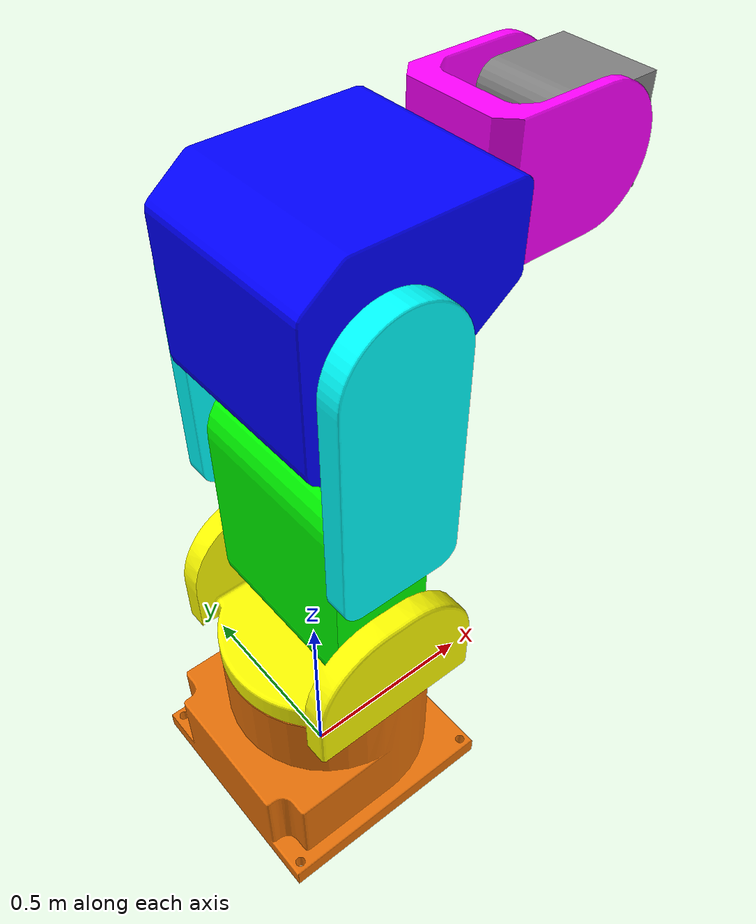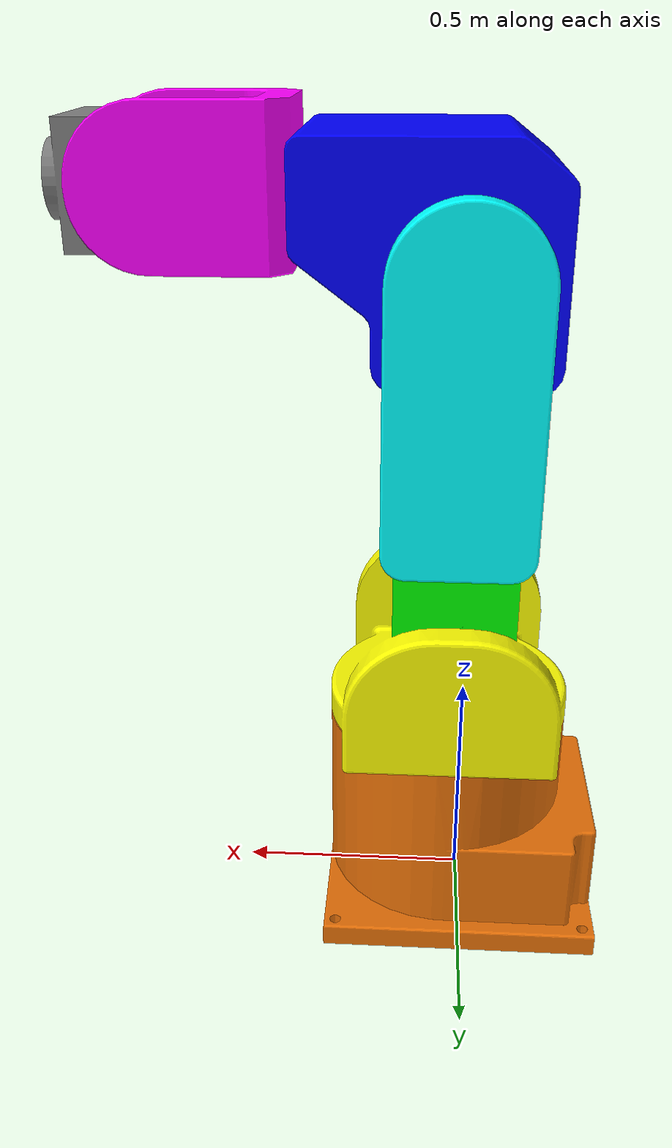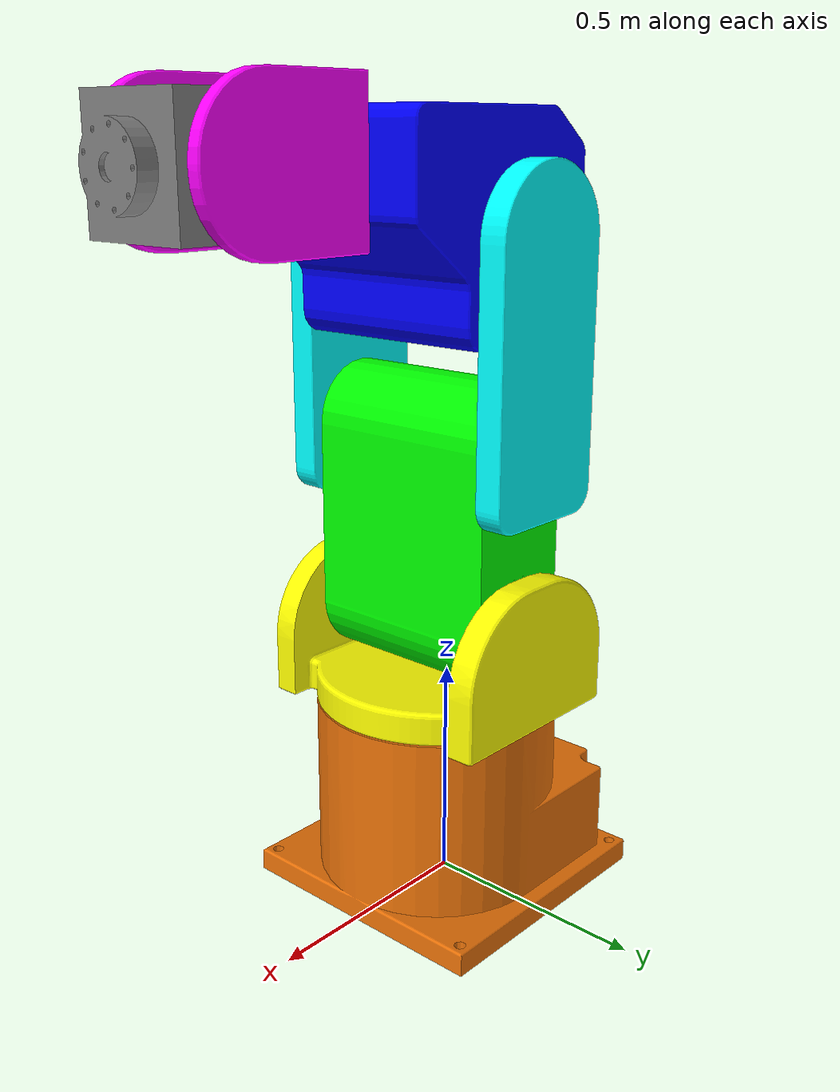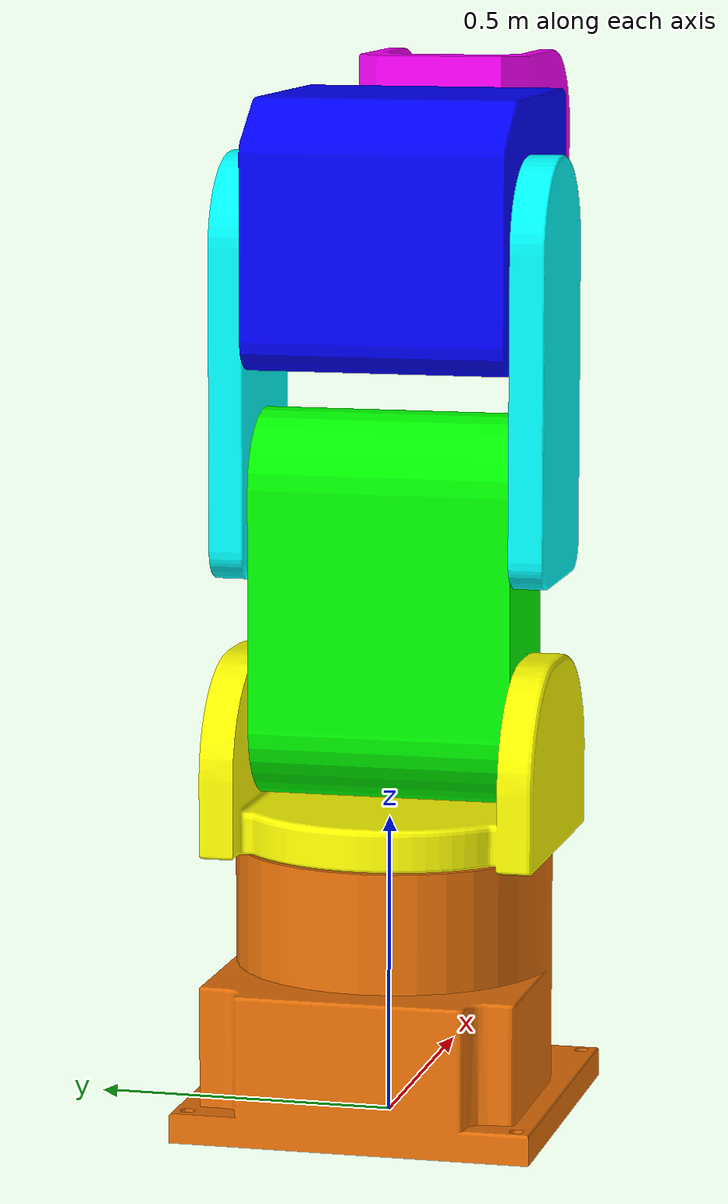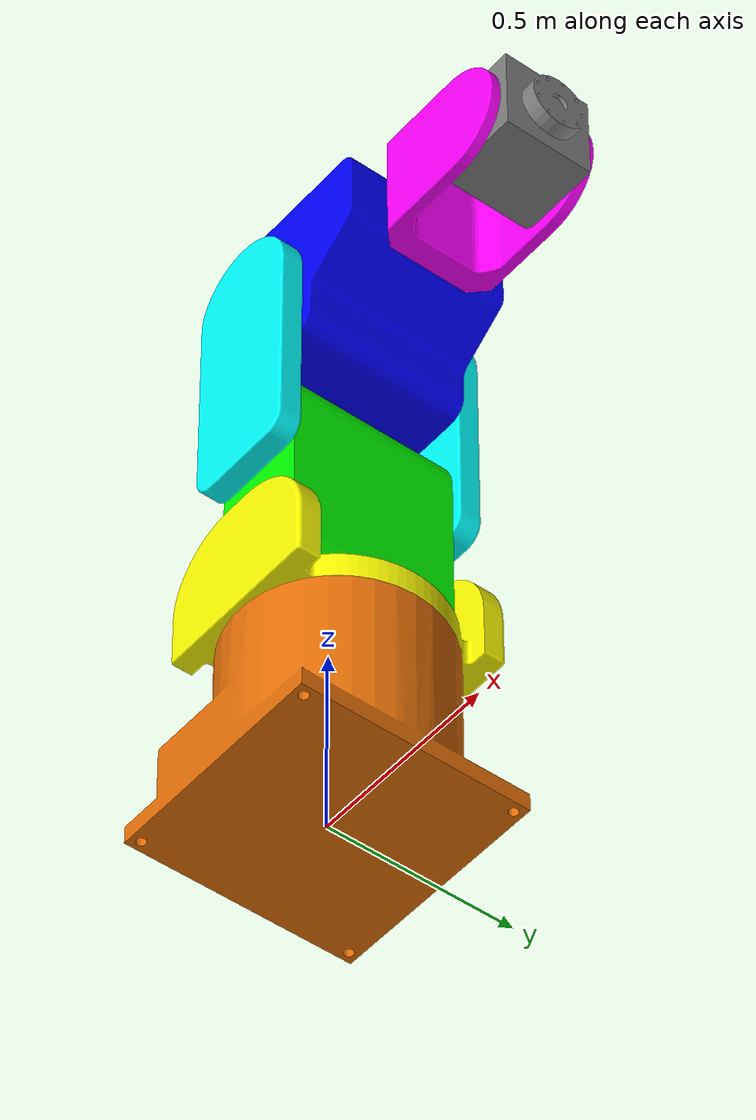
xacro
<robot name="polishing_robot" xmlns:xacro="http://ros.org/wiki/xacro">
  <xacro:property name="prefix" value="polishing_"/>
  <link name="${prefix}base_link">
    <inertial>
      <origin xyz="0.00435229897106417 1.19101823147447E-06 0.206310280142742" rpy="0 0 0"/>
      <mass value="118.32754627267"/>
      <inertia ixx="4.47689007324204" ixy="4.43639388222346E-05" ixz="-0.282702973308682" iyy="4.82074220348992" iyz="2.31671022438448E-05" izz="5.23809069840615"/>
    </inertial>
    <visual>
      <origin xyz="0 0 0" rpy="0 0 0"/>
      <geometry>
        <mesh filename="package://polishing_robot/meshes/base_link.STL"/>
      </geometry>
      <material name="">
        <color rgba="0.909803921568627 0.443137254901961 0.0313725490196078 1"/>
      </material>
    </visual>
    <collision>
      <origin xyz="0 0 0" rpy="0 0 0"/>
      <geometry>
        <mesh filename="package://polishing_robot/meshes/base_link.STL"/>
      </geometry>
    </collision>
  </link>
  <link name="${prefix}achse1">
    <inertial>
      <origin xyz="6.93889390390723E-18 -0.11465842559516 -5.0349895881356E-17" rpy="0 0 0"/>
      <mass value="37.2990953823488"/>
      <inertia ixx="1.58478276326517" ixy="6.72682473106839E-17" ixz="2.56697693671266E-07" iyy="1.78904675337478" iyz="-3.48174136545842E-17" izz="0.790434634778931"/>
    </inertial>
    <visual>
      <origin xyz="0 0 0" rpy="0 0 0"/>
      <geometry>
        <mesh filename="package://polishing_robot/meshes/achse1.STL"/>
      </geometry>
      <material name="">
        <color rgba="1 1 0 1"/>
      </material>
    </visual>
    <collision>
      <origin xyz="0 0 0" rpy="0 0 0"/>
      <geometry>
        <mesh filename="package://polishing_robot/meshes/achse1.STL"/>
      </geometry>
    </collision>
  </link>
  <joint name="${prefix}achse1_1" type="continuous">
    <origin xyz="0.0350000000000001 0 0.452" rpy="-1.5707963267949 0 0"/>
    <parent link="${prefix}base_link"/>
    <child link="${prefix}achse1"/>
    <axis xyz="0 1 0"/>
  </joint>
  <link name="${prefix}achse2">
    <inertial>
      <origin xyz="-0.20000241917792 2.17580123362815E-09 1.95958403433266E-06" rpy="0 0 0"/>
      <mass value="50.198715025992"/>
      <inertia ixx="1.10727917154317" ixy="-2.41399858669304E-07" ixz="2.94734339886711E-11" iyy="1.40197024292102" iyz="-2.64709386633196E-07" izz="0.879798937506276"/>
    </inertial>
    <visual>
      <origin xyz="0 0 0" rpy="0 0 0"/>
      <geometry>
        <mesh filename="package://polishing_robot/meshes/achse2.STL"/>
      </geometry>
      <material name="">
        <color rgba="0 1 0 1"/>
      </material>
    </visual>
    <collision>
      <origin xyz="0 0 0" rpy="0 0 0"/>
      <geometry>
        <mesh filename="package://polishing_robot/meshes/achse2.STL"/>
      </geometry>
    </collision>
  </link>
  <joint name="${prefix}achse2_1" type="continuous">
    <origin xyz="0 -0.2 0" rpy="-3.14159265358979 0 1.5707963267949"/>
    <parent link="${prefix}achse1"/>
    <child link="${prefix}achse2"/>
    <axis xyz="0 0 1"/>
  </joint>
  <link name="${prefix}achse3">
    <inertial>
      <origin xyz="-0.191833083805588 -1.9595890479206E-06 -2.77555756156289E-17" rpy="0 0 0"/>
      <mass value="39.4811032739565"/>
      <inertia ixx="1.95192669647927" ixy="-1.73409535332591E-16" ixz="-2.12396957990674E-16" iyy="1.72974079833023" iyz="2.16840434497101E-16" izz="3.29933055799716"/>
    </inertial>
    <visual>
      <origin xyz="0 0 0" rpy="0 0 0"/>
      <geometry>
        <mesh filename="package://polishing_robot/meshes/achse3.STL"/>
      </geometry>
      <material name="">
        <color rgba="0 1 1 1"/>
      </material>
    </visual>
    <collision>
      <origin xyz="0 0 0" rpy="0 0 0"/>
      <geometry>
        <mesh filename="package://polishing_robot/meshes/achse3.STL"/>
      </geometry>
    </collision>
  </link>
  <joint name="${prefix}achse3_1" type="continuous">
    <origin xyz="-0.400000000000001 0 0" rpy="-1.5707963267949 0 0"/>
    <parent link="${prefix}achse2"/>
    <child link="${prefix}achse3"/>
    <axis xyz="0 1 0"/>
  </joint>
  <link name="${prefix}achse4">
    <inertial>
      <origin xyz="0.057535307950419 0.0411539935888574 1.95958904790402E-06" rpy="0 0 0"/>
      <mass value="75.8024522154093"/>
      <inertia ixx="2.44855643577337" ixy="-0.362721911973878" ixz="8.23601090278812E-18" iyy="2.69457704418384" iyz="1.68922518611178E-16" izz="2.71260798797946"/>
    </inertial>
    <visual>
      <origin xyz="0 0 0" rpy="0 0 0"/>
      <geometry>
        <mesh filename="package://polishing_robot/meshes/achse4.STL"/>
      </geometry>
      <material name="">
        <color rgba="0 0 1 1"/>
      </material>
    </visual>
    <collision>
      <origin xyz="0 0 0" rpy="0 0 0"/>
      <geometry>
        <mesh filename="package://polishing_robot/meshes/achse4.STL"/>
      </geometry>
    </collision>
  </link>
  <joint name="${prefix}achse4_1" type="continuous">
    <origin xyz="-0.399999999999999 0 0" rpy="1.5707963267949 -1.5707963267949 0"/>
    <parent link="${prefix}achse3"/>
    <child link="${prefix}achse4"/>
    <axis xyz="0 0 1"/>
  </joint>
  <link name="${prefix}achse5">
    <inertial>
      <origin xyz="-1.80193934313788E-05 0.000118318329248121 0.164175255546401" rpy="0 0 0"/>
      <mass value="12.062537692943"/>
      <inertia ixx="0.322800598748907" ixy="-2.61435617459413E-08" ixz="-3.40682810523782E-05" iyy="0.258394199817323" iyz="0.000121923317188701" izz="0.223448646036243"/>
    </inertial>
    <visual>
      <origin xyz="0 0 0" rpy="0 0 0"/>
      <geometry>
        <mesh filename="package://polishing_robot/meshes/achse5.STL"/>
      </geometry>
      <material name="">
        <color rgba="1 0 1 1"/>
      </material>
    </visual>
    <collision>
      <origin xyz="0 0 0" rpy="0 0 0"/>
      <geometry>
        <mesh filename="package://polishing_robot/meshes/achse5.STL"/>
      </geometry>
    </collision>
  </link>
  <joint name="${prefix}achse5_1" type="continuous">
    <origin xyz="0.318896988774263 0.141654099261087 0" rpy="-1.5707963267949 0 -1.5707963267949"/>
    <parent link="${prefix}achse4"/>
    <child link="${prefix}achse5"/>
    <axis xyz="0 0 1"/>
  </joint>
  <link name="${prefix}achse6">
    <inertial>
      <origin xyz="-0.0103023778101935 -1.48497864755232E-06 6.66133814775094E-16" rpy="0 0 0"/>
      <mass value="11.7787579135722"/>
      <inertia ixx="0.110992482917872" ixy="9.37468004942909E-18" ixz="1.78551536412936E-18" iyy="0.127560903807858" iyz="3.58438038934541E-18" izz="0.121824672671966"/>
    </inertial>
    <visual>
      <origin xyz="0 0 0" rpy="0 0 0"/>
      <geometry>
        <mesh filename="package://polishing_robot/meshes/achse6.STL"/>
      </geometry>
      <material name="">
        <color rgba="0.501960784313725 0.501960784313725 0.501960784313725 1"/>
      </material>
    </visual>
    <collision>
      <origin xyz="0 0 0" rpy="0 0 0"/>
      <geometry>
        <mesh filename="package://polishing_robot/meshes/achse6.STL"/>
      </geometry>
    </collision>
  </link>
  <joint name="${prefix}achse6_1" type="continuous">
    <origin xyz="0 0 0.305281304512374" rpy="0 1.5707963267949 0"/>
    <parent link="${prefix}achse5"/>
    <child link="${prefix}achse6"/>
    <axis xyz="0 1 0"/>
  </joint>
</robot>
